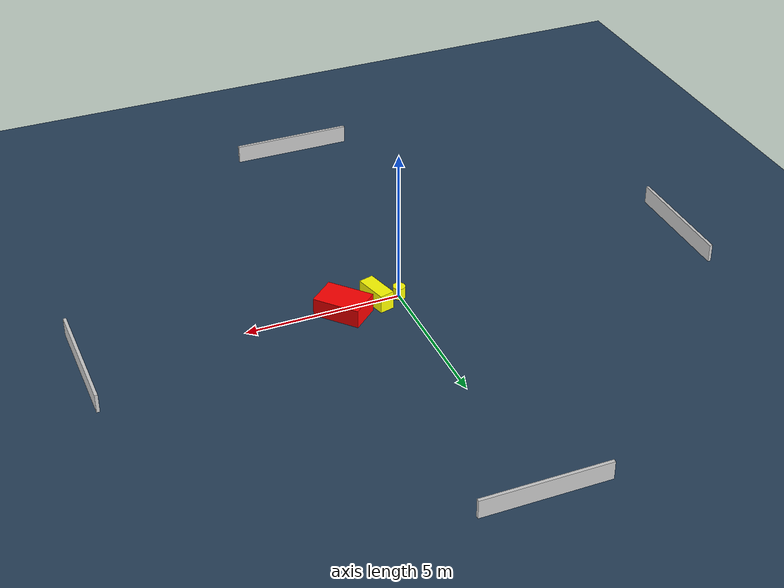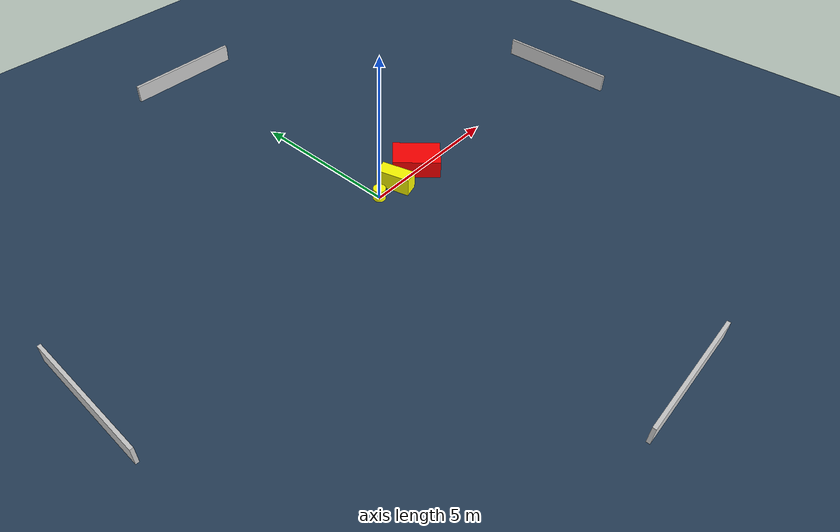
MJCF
<?xml version="1.0" ?>
<mujoco model="generated_environment">
  <option timestep="0.01" integrator="RK4" cone="elliptic"/>
  <default>
    <geom density="1"/>
  </default>
  <asset>
    <texture builtin="gradient" height="3072" name="skybox" rgb1="0.3 0.5 0.7" rgb2="0 0 0" type="skybox" width="512"/>
    <texture builtin="checker" height="300" name="groundplane" rgb1="0.2 0.3 0.4" rgb2="0.1 0.2 0.3" type="2d" width="300"/>
    <material name="groundplane" reflectance="0.2" texrepeat="5 5" texture="groundplane"/>
  </asset>
  <worldbody>
    <light dir="0 0 -1" directional="true" pos="0 0 1.5"/>
    <geom condim="3" friction="0.5 0.005 0.001" material="groundplane" name="floor" pos="0 0 0" size="0 0 0.05" type="plane"/>
    <body name="walls">
      <geom name="wall_1" condim="4" pos="-10.0 0.0 0.3" rgba="0.800000011920929 0.800000011920929 0.800000011920929 1.0" size="0.05 2.0 0.3" type="box"/>
      <geom name="wall_2" condim="4" pos="10.0 0.0 0.3" rgba="0.800000011920929 0.800000011920929 0.800000011920929 1.0" size="0.05 2.0 0.3" type="box"/>
      <geom name="wall_3" condim="4" pos="0.0 -10.0 0.3" rgba="0.800000011920929 0.800000011920929 0.800000011920929 1.0" size="2.0 0.05 0.3" type="box"/>
      <geom name="wall_4" condim="4" pos="0.0 10.0 0.3" rgba="0.800000011920929 0.800000011920929 0.800000011920929 1.0" size="2.0 0.05 0.3" type="box"/>
    </body>
    <body name="robot">
      <joint name="joint_x" type="slide" pos="0 0 0" axis="1 0 0"/>
      <joint name="joint_y" type="slide" pos="0 0 0" axis="0 1 0"/>
      <geom name="robot" type="cylinder" pos="0.0 0.0 0.2" size="0.2 0.2 0.0" mass="5.0" friction="1.0 0.005 0.0001" condim="4" rgba="1.0 1.0 0.0 1.0"/>
    </body>
    <body name="obstacle_1_movable">
      <geom name="obstacle_1_movable" condim="4" pos="0.7608451063847841 0.014496874977050279 0.3" euler="0 0 284.98752585261855" friction="0.0 0.005 0.001" rgba="1.0 1.0 0.0 1.0" size="0.5502417065013236 0.23981930167915708 0.3" type="box" mass="0.1"/>
      <joint type="free"/>
    </body>
    <body name="obstacle_2_static">
      <geom name="obstacle_2_static" condim="4" pos="1.9095644731455585 0.1431178803343719 0.3" euler="0 0 311.7172777072632" friction="0.0 0.005 0.001" rgba="1.0 0.0 0.0 1.0" size="0.7647614732148245 0.5160090090816056 0.3" type="box"/>
    </body>
  </worldbody>
  <actuator>
    <motor name="actuator_x" joint="joint_x" gear="1" ctrlrange="-1 1"/>
    <motor name="actuator_y" joint="joint_y" gear="1" ctrlrange="-1 1"/>
  </actuator>
</mujoco>
